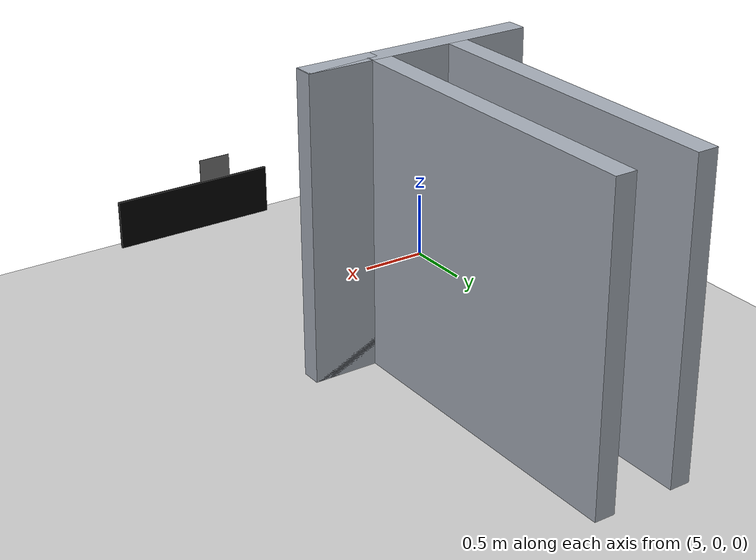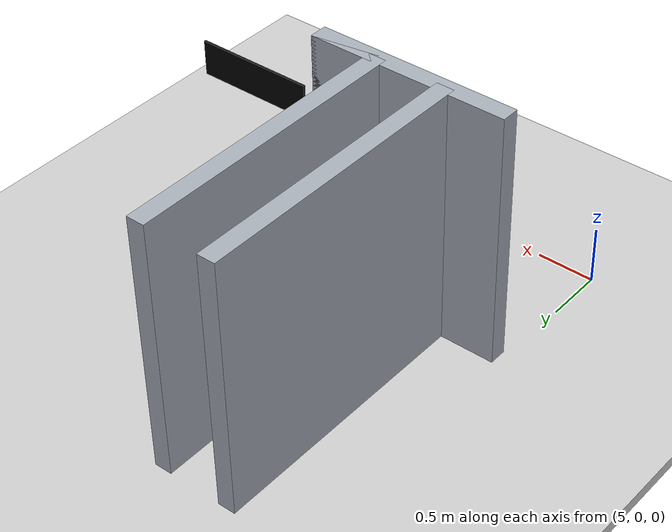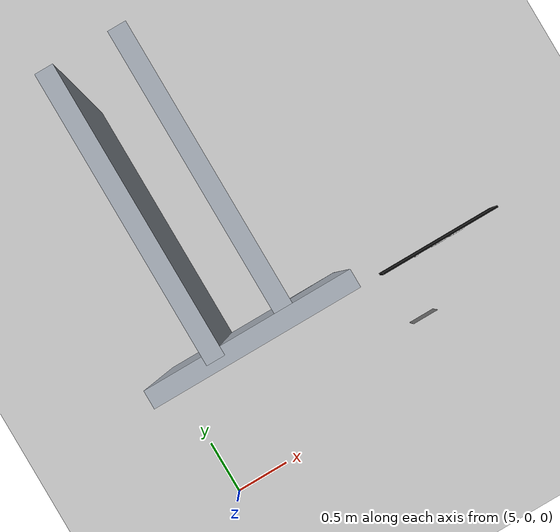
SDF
<sdf version="1.9">
 <world name="default">
  <model name="ground_plane">
   <static>true</static>
   <pose>4.75 0 -0.05 0 0 0</pose>
   <link name="body">
    <collision name="collision"><geometry><box><size>13.5 12 0.1</size></box></geometry></collision>
    <visual name="visual">
     <geometry><box><size>13.5 12 0.1</size></box></geometry>
     <material><ambient>0.8 0.8 0.8 1</ambient><diffuse>0.8 0.8 0.8 1</diffuse></material>
    </visual>
   </link>
  </model>
  <model name="room_1_1_1">
   <static>true</static>
   <pose>5.6 2.4 1.1 0 0 0</pose>
   <link name="body">
    <collision name="collision"><geometry><box><size>0.15 2.4 2.2</size></box></geometry></collision>
    <visual name="visual">
     <geometry><box><size>0.15 2.4 2.2</size></box></geometry>
     <material><ambient>0.65 0.68 0.72 1</ambient><diffuse>0.65 0.68 0.72 1</diffuse></material>
    </visual>
   </link>
  </model>
  <model name="hall_1_2">
   <static>true</static>
   <pose>5.9 1.2 1.1 0 0 0</pose>
   <link name="body">
    <collision name="collision">
     <geometry><box><size>1.7000000000000002 0.15 2.2</size></box></geometry>
    </collision>
    <visual name="visual">
     <geometry><box><size>1.7000000000000002 0.15 2.2</size></box></geometry>
     <material><ambient>0.65 0.68 0.72 1</ambient><diffuse>0.65 0.68 0.72 1</diffuse></material>
    </visual>
   </link>
  </model>
  <model name="room_1_2_-1">
   <static>true</static>
   <pose>6.2 2.4 1.1 0 0 0</pose>
   <link name="body">
    <collision name="collision"><geometry><box><size>0.15 2.4 2.2</size></box></geometry></collision>
    <visual name="visual">
     <geometry><box><size>0.15 2.4 2.2</size></box></geometry>
     <material><ambient>0.65 0.68 0.72 1</ambient><diffuse>0.65 0.68 0.72 1</diffuse></material>
    </visual>
   </link>
  </model>
  <model name="jamb_1_2_-1">
   <static>true</static>
   <pose>6.475 1.2 1.1 0 0 0</pose>
   <link name="body">
    <collision name="collision"><geometry><box><size>0.55 0.15 2.2</size></box></geometry></collision>
    <visual name="visual">
     <geometry><box><size>0.55 0.15 2.2</size></box></geometry>
     <material><ambient>0.65 0.68 0.72 1</ambient><diffuse>0.65 0.68 0.72 1</diffuse></material>
    </visual>
   </link>
  </model>
  <model name="readable_r3geo_base_r010_left_2_entrance_corridor">
   <static>true</static>
   <pose>7.5 1.1 1.43 0 0 0</pose>
   <link name="lettering">
    <visual name="backboard">
     <geometry><box><size>1.02 0.018 0.3</size></box></geometry>
     <material>
      <ambient>.015 .015 .015 1</ambient>
      <diffuse>.015 .015 .015 1</diffuse>
      <emissive>.015 .015 .015 1</emissive>
     </material>
     <cast_shadows>false</cast_shadows>
    </visual>
    <visual name="letter_0_0_0">
     <pose>-0.208 -0.014 0.078 0 0 0</pose>
     <geometry><box><size>0.024439999999999996 0.008 0.024439999999999996</size></box></geometry>
     <material>
      <ambient>.96 .96 .96 1</ambient>
      <diffuse>.96 .96 .96 1</diffuse>
      <emissive>.96 .96 .96 1</emissive>
     </material>
     <cast_shadows>false</cast_shadows>
    </visual>
    <visual name="letter_0_1_0">
     <pose>-0.208 -0.014 0.052 0 0 0</pose>
     <geometry><box><size>0.024439999999999996 0.008 0.024439999999999996</size></box></geometry>
     <material>
      <ambient>.96 .96 .96 1</ambient>
      <diffuse>.96 .96 .96 1</diffuse>
      <emissive>.96 .96 .96 1</emissive>
     </material>
     <cast_shadows>false</cast_shadows>
    </visual>
    <visual name="letter_0_2_0">
     <pose>-0.208 -0.014 0.026 0 0 0</pose>
     <geometry><box><size>0.024439999999999996 0.008 0.024439999999999996</size></box></geometry>
     <material>
      <ambient>.96 .96 .96 1</ambient>
      <diffuse>.96 .96 .96 1</diffuse>
      <emissive>.96 .96 .96 1</emissive>
     </material>
     <cast_shadows>false</cast_shadows>
    </visual>
    <visual name="letter_0_3_0">
     <pose>-0.208 -0.014 0 0 0 0</pose>
     <geometry><box><size>0.024439999999999996 0.008 0.024439999999999996</size></box></geometry>
     <material>
      <ambient>.96 .96 .96 1</ambient>
      <diffuse>.96 .96 .96 1</diffuse>
      <emissive>.96 .96 .96 1</emissive>
     </material>
     <cast_shadows>false</cast_shadows>
    </visual>
    <visual name="letter_0_4_0">
     <pose>-0.208 -0.014 -0.026 0 0 0</pose>
     <geometry><box><size>0.024439999999999996 0.008 0.024439999999999996</size></box></geometry>
     <material>
      <ambient>.96 .96 .96 1</ambient>
      <diffuse>.96 .96 .96 1</diffuse>
      <emissive>.96 .96 .96 1</emissive>
     </material>
     <cast_shadows>false</cast_shadows>
    </visual>
    <visual name="letter_0_5_0">
     <pose>-0.208 -0.014 -0.052 0 0 0</pose>
     <geometry><box><size>0.024439999999999996 0.008 0.024439999999999996</size></box></geometry>
     <material>
      <ambient>.96 .96 .96 1</ambient>
      <diffuse>.96 .96 .96 1</diffuse>
      <emissive>.96 .96 .96 1</emissive>
     </material>
     <cast_shadows>false</cast_shadows>
    </visual>
    <visual name="letter_0_6_0">
     <pose>-0.208 -0.014 -0.078 0 0 0</pose>
     <geometry><box><size>0.024439999999999996 0.008 0.024439999999999996</size></box></geometry>
     <material>
      <ambient>.96 .96 .96 1</ambient>
      <diffuse>.96 .96 .96 1</diffuse>
      <emissive>.96 .96 .96 1</emissive>
     </material>
     <cast_shadows>false</cast_shadows>
    </visual>
    <visual name="letter_0_6_1">
     <pose>-0.182 -0.014 -0.078 0 0 0</pose>
     <geometry><box><size>0.024439999999999996 0.008 0.024439999999999996</size></box></geometry>
     <material>
      <ambient>.96 .96 .96 1</ambient>
      <diffuse>.96 .96 .96 1</diffuse>
      <emissive>.96 .96 .96 1</emissive>
     </material>
     <cast_shadows>false</cast_shadows>
    </visual>
    <visual name="letter_0_6_2">
     <pose>-0.156 -0.014 -0.078 0 0 0</pose>
     <geometry><box><size>0.024439999999999996 0.008 0.024439999999999996</size></box></geometry>
     <material>
      <ambient>.96 .96 .96 1</ambient>
      <diffuse>.96 .96 .96 1</diffuse>
      <emissive>.96 .96 .96 1</emissive>
     </material>
     <cast_shadows>false</cast_shadows>
    </visual>
    <visual name="letter_0_6_3">
     <pose>-0.13 -0.014 -0.078 0 0 0</pose>
     <geometry><box><size>0.024439999999999996 0.008 0.024439999999999996</size></box></geometry>
     <material>
      <ambient>.96 .96 .96 1</ambient>
      <diffuse>.96 .96 .96 1</diffuse>
      <emissive>.96 .96 .96 1</emissive>
     </material>
     <cast_shadows>false</cast_shadows>
    </visual>
    <visual name="letter_0_6_4">
     <pose>-0.104 -0.014 -0.078 0 0 0</pose>
     <geometry><box><size>0.024439999999999996 0.008 0.024439999999999996</size></box></geometry>
     <material>
      <ambient>.96 .96 .96 1</ambient>
      <diffuse>.96 .96 .96 1</diffuse>
      <emissive>.96 .96 .96 1</emissive>
     </material>
     <cast_shadows>false</cast_shadows>
    </visual>
    <visual name="letter_1_0_1">
     <pose>-0.026 -0.014 0.078 0 0 0</pose>
     <geometry><box><size>0.024439999999999996 0.008 0.024439999999999996</size></box></geometry>
     <material>
      <ambient>.96 .96 .96 1</ambient>
      <diffuse>.96 .96 .96 1</diffuse>
      <emissive>.96 .96 .96 1</emissive>
     </material>
     <cast_shadows>false</cast_shadows>
    </visual>
    <visual name="letter_1_0_2">
     <pose>0 -0.014 0.078 0 0 0</pose>
     <geometry><box><size>0.024439999999999996 0.008 0.024439999999999996</size></box></geometry>
     <material>
      <ambient>.96 .96 .96 1</ambient>
      <diffuse>.96 .96 .96 1</diffuse>
      <emissive>.96 .96 .96 1</emissive>
     </material>
     <cast_shadows>false</cast_shadows>
    </visual>
    <visual name="letter_1_0_3">
     <pose>0.026 -0.014 0.078 0 0 0</pose>
     <geometry><box><size>0.024439999999999996 0.008 0.024439999999999996</size></box></geometry>
     <material>
      <ambient>.96 .96 .96 1</ambient>
      <diffuse>.96 .96 .96 1</diffuse>
      <emissive>.96 .96 .96 1</emissive>
     </material>
     <cast_shadows>false</cast_shadows>
    </visual>
    <visual name="letter_1_1_0">
     <pose>-0.052 -0.014 0.052 0 0 0</pose>
     <geometry><box><size>0.024439999999999996 0.008 0.024439999999999996</size></box></geometry>
     <material>
      <ambient>.96 .96 .96 1</ambient>
      <diffuse>.96 .96 .96 1</diffuse>
      <emissive>.96 .96 .96 1</emissive>
     </material>
     <cast_shadows>false</cast_shadows>
    </visual>
    <visual name="letter_1_1_4">
     <pose>0.052 -0.014 0.052 0 0 0</pose>
     <geometry><box><size>0.024439999999999996 0.008 0.024439999999999996</size></box></geometry>
     <material>
      <ambient>.96 .96 .96 1</ambient>
      <diffuse>.96 .96 .96 1</diffuse>
      <emissive>.96 .96 .96 1</emissive>
     </material>
     <cast_shadows>false</cast_shadows>
    </visual>
    <visual name="letter_1_2_0">
     <pose>-0.052 -0.014 0.026 0 0 0</pose>
     <geometry><box><size>0.024439999999999996 0.008 0.024439999999999996</size></box></geometry>
     <material>
      <ambient>.96 .96 .96 1</ambient>
      <diffuse>.96 .96 .96 1</diffuse>
      <emissive>.96 .96 .96 1</emissive>
     </material>
     <cast_shadows>false</cast_shadows>
    </visual>
    <visual name="letter_1_2_4">
     <pose>0.052 -0.014 0.026 0 0 0</pose>
     <geometry><box><size>0.024439999999999996 0.008 0.024439999999999996</size></box></geometry>
     <material>
      <ambient>.96 .96 .96 1</ambient>
      <diffuse>.96 .96 .96 1</diffuse>
      <emissive>.96 .96 .96 1</emissive>
     </material>
     <cast_shadows>false</cast_shadows>
    </visual>
    <visual name="letter_1_3_0">
     <pose>-0.052 -0.014 0 0 0 0</pose>
     <geometry><box><size>0.024439999999999996 0.008 0.024439999999999996</size></box></geometry>
     <material>
      <ambient>.96 .96 .96 1</ambient>
      <diffuse>.96 .96 .96 1</diffuse>
      <emissive>.96 .96 .96 1</emissive>
     </material>
     <cast_shadows>false</cast_shadows>
    </visual>
    <visual name="letter_1_3_1">
     <pose>-0.026 -0.014 0 0 0 0</pose>
     <geometry><box><size>0.024439999999999996 0.008 0.024439999999999996</size></box></geometry>
     <material>
      <ambient>.96 .96 .96 1</ambient>
      <diffuse>.96 .96 .96 1</diffuse>
      <emissive>.96 .96 .96 1</emissive>
     </material>
     <cast_shadows>false</cast_shadows>
    </visual>
    <visual name="letter_1_3_2">
     <pose>0 -0.014 0 0 0 0</pose>
     <geometry><box><size>0.024439999999999996 0.008 0.024439999999999996</size></box></geometry>
     <material>
      <ambient>.96 .96 .96 1</ambient>
      <diffuse>.96 .96 .96 1</diffuse>
      <emissive>.96 .96 .96 1</emissive>
     </material>
     <cast_shadows>false</cast_shadows>
    </visual>
    <visual name="letter_1_3_3">
     <pose>0.026 -0.014 0 0 0 0</pose>
     <geometry><box><size>0.024439999999999996 0.008 0.024439999999999996</size></box></geometry>
     <material>
      <ambient>.96 .96 .96 1</ambient>
      <diffuse>.96 .96 .96 1</diffuse>
      <emissive>.96 .96 .96 1</emissive>
     </material>
     <cast_shadows>false</cast_shadows>
    </visual>
    <visual name="letter_1_3_4">
     <pose>0.052 -0.014 0 0 0 0</pose>
     <geometry><box><size>0.024439999999999996 0.008 0.024439999999999996</size></box></geometry>
     <material>
      <ambient>.96 .96 .96 1</ambient>
      <diffuse>.96 .96 .96 1</diffuse>
      <emissive>.96 .96 .96 1</emissive>
     </material>
     <cast_shadows>false</cast_shadows>
    </visual>
    <visual name="letter_1_4_0">
     <pose>-0.052 -0.014 -0.026 0 0 0</pose>
     <geometry><box><size>0.024439999999999996 0.008 0.024439999999999996</size></box></geometry>
     <material>
      <ambient>.96 .96 .96 1</ambient>
      <diffuse>.96 .96 .96 1</diffuse>
      <emissive>.96 .96 .96 1</emissive>
     </material>
     <cast_shadows>false</cast_shadows>
    </visual>
    <visual name="letter_1_4_4">
     <pose>0.052 -0.014 -0.026 0 0 0</pose>
     <geometry><box><size>0.024439999999999996 0.008 0.024439999999999996</size></box></geometry>
     <material>
      <ambient>.96 .96 .96 1</ambient>
      <diffuse>.96 .96 .96 1</diffuse>
      <emissive>.96 .96 .96 1</emissive>
     </material>
     <cast_shadows>false</cast_shadows>
    </visual>
    <visual name="letter_1_5_0">
     <pose>-0.052 -0.014 -0.052 0 0 0</pose>
     <geometry><box><size>0.024439999999999996 0.008 0.024439999999999996</size></box></geometry>
     <material>
      <ambient>.96 .96 .96 1</ambient>
      <diffuse>.96 .96 .96 1</diffuse>
      <emissive>.96 .96 .96 1</emissive>
     </material>
     <cast_shadows>false</cast_shadows>
    </visual>
    <visual name="letter_1_5_4">
     <pose>0.052 -0.014 -0.052 0 0 0</pose>
     <geometry><box><size>0.024439999999999996 0.008 0.024439999999999996</size></box></geometry>
     <material>
      <ambient>.96 .96 .96 1</ambient>
      <diffuse>.96 .96 .96 1</diffuse>
      <emissive>.96 .96 .96 1</emissive>
     </material>
     <cast_shadows>false</cast_shadows>
    </visual>
    <visual name="letter_1_6_0">
     <pose>-0.052 -0.014 -0.078 0 0 0</pose>
     <geometry><box><size>0.024439999999999996 0.008 0.024439999999999996</size></box></geometry>
     <material>
      <ambient>.96 .96 .96 1</ambient>
      <diffuse>.96 .96 .96 1</diffuse>
      <emissive>.96 .96 .96 1</emissive>
     </material>
     <cast_shadows>false</cast_shadows>
    </visual>
    <visual name="letter_1_6_4">
     <pose>0.052 -0.014 -0.078 0 0 0</pose>
     <geometry><box><size>0.024439999999999996 0.008 0.024439999999999996</size></box></geometry>
     <material>
      <ambient>.96 .96 .96 1</ambient>
      <diffuse>.96 .96 .96 1</diffuse>
      <emissive>.96 .96 .96 1</emissive>
     </material>
     <cast_shadows>false</cast_shadows>
    </visual>
    <visual name="letter_2_0_0">
     <pose>0.104 -0.014 0.078 0 0 0</pose>
     <geometry><box><size>0.024439999999999996 0.008 0.024439999999999996</size></box></geometry>
     <material>
      <ambient>.96 .96 .96 1</ambient>
      <diffuse>.96 .96 .96 1</diffuse>
      <emissive>.96 .96 .96 1</emissive>
     </material>
     <cast_shadows>false</cast_shadows>
    </visual>
    <visual name="letter_2_0_1">
     <pose>0.13 -0.014 0.078 0 0 0</pose>
     <geometry><box><size>0.024439999999999996 0.008 0.024439999999999996</size></box></geometry>
     <material>
      <ambient>.96 .96 .96 1</ambient>
      <diffuse>.96 .96 .96 1</diffuse>
      <emissive>.96 .96 .96 1</emissive>
     </material>
     <cast_shadows>false</cast_shadows>
    </visual>
    <visual name="letter_2_0_2">
     <pose>0.156 -0.014 0.078 0 0 0</pose>
     <geometry><box><size>0.024439999999999996 0.008 0.024439999999999996</size></box></geometry>
     <material>
      <ambient>.96 .96 .96 1</ambient>
      <diffuse>.96 .96 .96 1</diffuse>
      <emissive>.96 .96 .96 1</emissive>
     </material>
     <cast_shadows>false</cast_shadows>
    </visual>
    <visual name="letter_2_0_3">
     <pose>0.182 -0.014 0.078 0 0 0</pose>
     <geometry><box><size>0.024439999999999996 0.008 0.024439999999999996</size></box></geometry>
     <material>
      <ambient>.96 .96 .96 1</ambient>
      <diffuse>.96 .96 .96 1</diffuse>
      <emissive>.96 .96 .96 1</emissive>
     </material>
     <cast_shadows>false</cast_shadows>
    </visual>
    <visual name="letter_2_1_0">
     <pose>0.104 -0.014 0.052 0 0 0</pose>
     <geometry><box><size>0.024439999999999996 0.008 0.024439999999999996</size></box></geometry>
     <material>
      <ambient>.96 .96 .96 1</ambient>
      <diffuse>.96 .96 .96 1</diffuse>
      <emissive>.96 .96 .96 1</emissive>
     </material>
     <cast_shadows>false</cast_shadows>
    </visual>
    <visual name="letter_2_1_4">
     <pose>0.208 -0.014 0.052 0 0 0</pose>
     <geometry><box><size>0.024439999999999996 0.008 0.024439999999999996</size></box></geometry>
     <material>
      <ambient>.96 .96 .96 1</ambient>
      <diffuse>.96 .96 .96 1</diffuse>
      <emissive>.96 .96 .96 1</emissive>
     </material>
     <cast_shadows>false</cast_shadows>
    </visual>
    <visual name="letter_2_2_0">
     <pose>0.104 -0.014 0.026 0 0 0</pose>
     <geometry><box><size>0.024439999999999996 0.008 0.024439999999999996</size></box></geometry>
     <material>
      <ambient>.96 .96 .96 1</ambient>
      <diffuse>.96 .96 .96 1</diffuse>
      <emissive>.96 .96 .96 1</emissive>
     </material>
     <cast_shadows>false</cast_shadows>
    </visual>
    <visual name="letter_2_2_4">
     <pose>0.208 -0.014 0.026 0 0 0</pose>
     <geometry><box><size>0.024439999999999996 0.008 0.024439999999999996</size></box></geometry>
     <material>
      <ambient>.96 .96 .96 1</ambient>
      <diffuse>.96 .96 .96 1</diffuse>
      <emissive>.96 .96 .96 1</emissive>
     </material>
     <cast_shadows>false</cast_shadows>
    </visual>
    <visual name="letter_2_3_0">
     <pose>0.104 -0.014 0 0 0 0</pose>
     <geometry><box><size>0.024439999999999996 0.008 0.024439999999999996</size></box></geometry>
     <material>
      <ambient>.96 .96 .96 1</ambient>
      <diffuse>.96 .96 .96 1</diffuse>
      <emissive>.96 .96 .96 1</emissive>
     </material>
     <cast_shadows>false</cast_shadows>
    </visual>
    <visual name="letter_2_3_1">
     <pose>0.13 -0.014 0 0 0 0</pose>
     <geometry><box><size>0.024439999999999996 0.008 0.024439999999999996</size></box></geometry>
     <material>
      <ambient>.96 .96 .96 1</ambient>
      <diffuse>.96 .96 .96 1</diffuse>
      <emissive>.96 .96 .96 1</emissive>
     </material>
     <cast_shadows>false</cast_shadows>
    </visual>
    <visual name="letter_2_3_2">
     <pose>0.156 -0.014 0 0 0 0</pose>
     <geometry><box><size>0.024439999999999996 0.008 0.024439999999999996</size></box></geometry>
     <material>
      <ambient>.96 .96 .96 1</ambient>
      <diffuse>.96 .96 .96 1</diffuse>
      <emissive>.96 .96 .96 1</emissive>
     </material>
     <cast_shadows>false</cast_shadows>
    </visual>
    <visual name="letter_2_3_3">
     <pose>0.182 -0.014 0 0 0 0</pose>
     <geometry><box><size>0.024439999999999996 0.008 0.024439999999999996</size></box></geometry>
     <material>
      <ambient>.96 .96 .96 1</ambient>
      <diffuse>.96 .96 .96 1</diffuse>
      <emissive>.96 .96 .96 1</emissive>
     </material>
     <cast_shadows>false</cast_shadows>
    </visual>
    <visual name="letter_2_4_0">
     <pose>0.104 -0.014 -0.026 0 0 0</pose>
     <geometry><box><size>0.024439999999999996 0.008 0.024439999999999996</size></box></geometry>
     <material>
      <ambient>.96 .96 .96 1</ambient>
      <diffuse>.96 .96 .96 1</diffuse>
      <emissive>.96 .96 .96 1</emissive>
     </material>
     <cast_shadows>false</cast_shadows>
    </visual>
    <visual name="letter_2_4_4">
     <pose>0.208 -0.014 -0.026 0 0 0</pose>
     <geometry><box><size>0.024439999999999996 0.008 0.024439999999999996</size></box></geometry>
     <material>
      <ambient>.96 .96 .96 1</ambient>
      <diffuse>.96 .96 .96 1</diffuse>
      <emissive>.96 .96 .96 1</emissive>
     </material>
     <cast_shadows>false</cast_shadows>
    </visual>
    <visual name="letter_2_5_0">
     <pose>0.104 -0.014 -0.052 0 0 0</pose>
     <geometry><box><size>0.024439999999999996 0.008 0.024439999999999996</size></box></geometry>
     <material>
      <ambient>.96 .96 .96 1</ambient>
      <diffuse>.96 .96 .96 1</diffuse>
      <emissive>.96 .96 .96 1</emissive>
     </material>
     <cast_shadows>false</cast_shadows>
    </visual>
    <visual name="letter_2_5_4">
     <pose>0.208 -0.014 -0.052 0 0 0</pose>
     <geometry><box><size>0.024439999999999996 0.008 0.024439999999999996</size></box></geometry>
     <material>
      <ambient>.96 .96 .96 1</ambient>
      <diffuse>.96 .96 .96 1</diffuse>
      <emissive>.96 .96 .96 1</emissive>
     </material>
     <cast_shadows>false</cast_shadows>
    </visual>
    <visual name="letter_2_6_0">
     <pose>0.104 -0.014 -0.078 0 0 0</pose>
     <geometry><box><size>0.024439999999999996 0.008 0.024439999999999996</size></box></geometry>
     <material>
      <ambient>.96 .96 .96 1</ambient>
      <diffuse>.96 .96 .96 1</diffuse>
      <emissive>.96 .96 .96 1</emissive>
     </material>
     <cast_shadows>false</cast_shadows>
    </visual>
    <visual name="letter_2_6_1">
     <pose>0.13 -0.014 -0.078 0 0 0</pose>
     <geometry><box><size>0.024439999999999996 0.008 0.024439999999999996</size></box></geometry>
     <material>
      <ambient>.96 .96 .96 1</ambient>
      <diffuse>.96 .96 .96 1</diffuse>
      <emissive>.96 .96 .96 1</emissive>
     </material>
     <cast_shadows>false</cast_shadows>
    </visual>
    <visual name="letter_2_6_2">
     <pose>0.156 -0.014 -0.078 0 0 0</pose>
     <geometry><box><size>0.024439999999999996 0.008 0.024439999999999996</size></box></geometry>
     <material>
      <ambient>.96 .96 .96 1</ambient>
      <diffuse>.96 .96 .96 1</diffuse>
      <emissive>.96 .96 .96 1</emissive>
     </material>
     <cast_shadows>false</cast_shadows>
    </visual>
    <visual name="letter_2_6_3">
     <pose>0.182 -0.014 -0.078 0 0 0</pose>
     <geometry><box><size>0.024439999999999996 0.008 0.024439999999999996</size></box></geometry>
     <material>
      <ambient>.96 .96 .96 1</ambient>
      <diffuse>.96 .96 .96 1</diffuse>
      <emissive>.96 .96 .96 1</emissive>
     </material>
     <cast_shadows>false</cast_shadows>
    </visual>
   </link>
  </model>
  <model name="expansion_occluder_r3geo_base_r010_left_2_doorway">
   <static>true</static>
   <pose>7.111423283548439 0.6448999999999998 1.3808800228963936 -1.5707963267948966 -0.0 -6.123233995736766e-17</pose>
   <link name="visual_only">
    <visual name="neutral_occluder">
     <geometry><box><size>0.2164465670968784 0.2776399542072125 0.002</size></box></geometry>
     <material><ambient>.45 .45 .45 1</ambient><diffuse>.45 .45 .45 1</diffuse></material>
     <cast_shadows>false</cast_shadows>
    </visual>
   </link>
  </model>
 </world>
</sdf>
